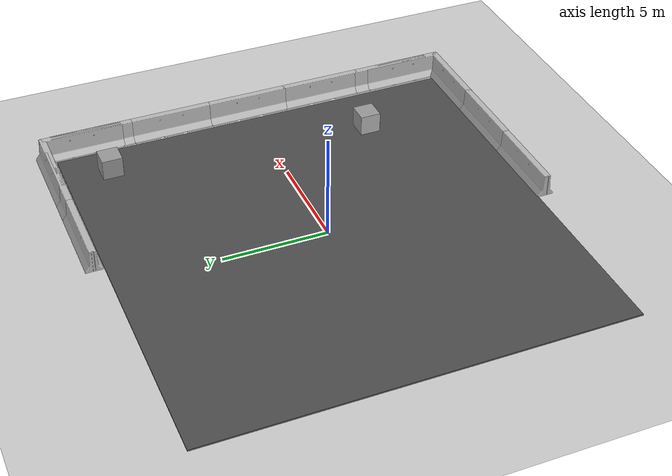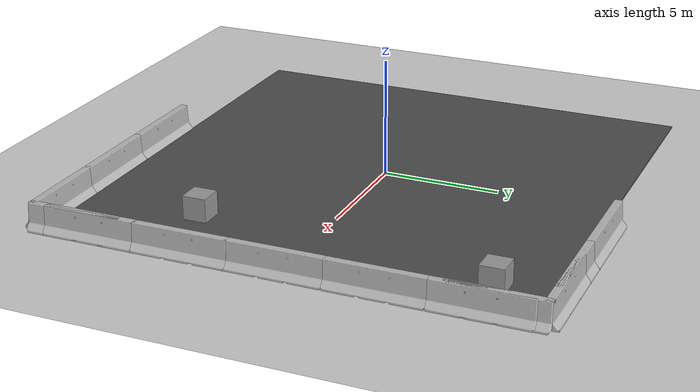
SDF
<sdf version="1.6">
 <world name="default">
  <model name="ground_plane">
   <static>1</static>
   <link name="link">
    <collision name="collision">
     <geometry><plane><normal>0 0 1</normal><size>100 100</size></plane></geometry>
     <surface><friction><ode><mu>100</mu><mu2>50</mu2></ode></friction></surface>
    </collision>
    <visual name="visual">
     <cast_shadows>0</cast_shadows>
     <geometry><plane><normal>0 0 1</normal><size>100 100</size></plane></geometry>
     <material>
      <script><uri>file://media/materials/scripts/gazebo.material</uri><name>Gazebo/Grey</name></script>
     </material>
    </visual>
   </link>
  </model>
  <model name="asphalt_plane">
   <static>1</static>
   <link name="link">
    <collision name="collision"><geometry><box><size>20 20 0.1</size></box></geometry></collision>
    <visual name="visual">
     <cast_shadows>0</cast_shadows>
     <geometry><box><size>20 20 0.1</size></box></geometry>
     <material>
      <script>
       <uri>model://asphalt_plane/materials/scripts</uri>
       <uri>model://asphalt_plane/materials/textures</uri>
       <name>vrc/asphalt</name>
      </script>
     </material>
    </visual>
   </link>
   <pose>-0.108878 -0.066396 0 0 -0 0</pose>
  </model>
  <model name="jersey_barrier_clone_0_clone_clone_0">
   <static>1</static>
   <link name="link">
    <visual name="visual">
     <geometry><mesh><uri>model://jersey_barrier/meshes/jersey_barrier.dae</uri></mesh></geometry>
    </visual>
    <collision name="upright">
     <pose>0 0 0.5715 0 -0 0</pose>
     <geometry><box><size>4.06542 0.3063 1.143</size></box></geometry>
    </collision>
    <collision name="base">
     <pose>0 0 0.032258 0 -0 0</pose>
     <geometry><box><size>4.06542 0.8107 0.064516</size></box></geometry>
    </collision>
    <collision name="base2">
     <pose>0 0 0.1 0 -0 0</pose>
     <geometry><box><size>4.06542 0.65 0.1</size></box></geometry>
    </collision>
    <collision name="base3">
     <pose>0 0 0.2 0 -0 0</pose>
     <geometry><box><size>4.06542 0.5 0.1</size></box></geometry>
    </collision>
    <collision name="left-angle">
     <pose>0 -0.224 0.2401 0.9 -0 0</pose>
     <geometry><box><size>4.06542 0.5 0.064516</size></box></geometry>
    </collision>
    <collision name="right-angle">
     <pose>0 0.224 0.2401 -0.9 0 0</pose>
     <geometry><box><size>4.06542 0.5 0.064516</size></box></geometry>
    </collision>
   </link>
   <pose>10.4387 4.00505 0 0 0 -1.56853</pose>
  </model>
  <model name="jersey_barrier_clone_0_clone_clone_0_clone">
   <static>1</static>
   <link name="link">
    <visual name="visual">
     <geometry><mesh><uri>model://jersey_barrier/meshes/jersey_barrier.dae</uri></mesh></geometry>
    </visual>
    <collision name="upright">
     <pose>0 0 0.5715 0 -0 0</pose>
     <geometry><box><size>4.06542 0.3063 1.143</size></box></geometry>
    </collision>
    <collision name="base">
     <pose>0 0 0.032258 0 -0 0</pose>
     <geometry><box><size>4.06542 0.8107 0.064516</size></box></geometry>
    </collision>
    <collision name="base2">
     <pose>0 0 0.1 0 -0 0</pose>
     <geometry><box><size>4.06542 0.65 0.1</size></box></geometry>
    </collision>
    <collision name="base3">
     <pose>0 0 0.2 0 -0 0</pose>
     <geometry><box><size>4.06542 0.5 0.1</size></box></geometry>
    </collision>
    <collision name="left-angle">
     <pose>0 -0.224 0.2401 0.9 -0 0</pose>
     <geometry><box><size>4.06542 0.5 0.064516</size></box></geometry>
    </collision>
    <collision name="right-angle">
     <pose>0 0.224 0.2401 -0.9 0 0</pose>
     <geometry><box><size>4.06542 0.5 0.064516</size></box></geometry>
    </collision>
   </link>
   <pose>10.4294 8.00092 0 0 0 -1.56853</pose>
  </model>
  <model name="jersey_barrier_clone_0_clone_clone_0_clone_0">
   <static>1</static>
   <link name="link">
    <visual name="visual">
     <geometry><mesh><uri>model://jersey_barrier/meshes/jersey_barrier.dae</uri></mesh></geometry>
    </visual>
    <collision name="upright">
     <pose>0 0 0.5715 0 -0 0</pose>
     <geometry><box><size>4.06542 0.3063 1.143</size></box></geometry>
    </collision>
    <collision name="base">
     <pose>0 0 0.032258 0 -0 0</pose>
     <geometry><box><size>4.06542 0.8107 0.064516</size></box></geometry>
    </collision>
    <collision name="base2">
     <pose>0 0 0.1 0 -0 0</pose>
     <geometry><box><size>4.06542 0.65 0.1</size></box></geometry>
    </collision>
    <collision name="base3">
     <pose>0 0 0.2 0 -0 0</pose>
     <geometry><box><size>4.06542 0.5 0.1</size></box></geometry>
    </collision>
    <collision name="left-angle">
     <pose>0 -0.224 0.2401 0.9 -0 0</pose>
     <geometry><box><size>4.06542 0.5 0.064516</size></box></geometry>
    </collision>
    <collision name="right-angle">
     <pose>0 0.224 0.2401 -0.9 0 0</pose>
     <geometry><box><size>4.06542 0.5 0.064516</size></box></geometry>
    </collision>
   </link>
   <pose>10.4404 0.012962 0 0 0 -1.56853</pose>
  </model>
  <model name="jersey_barrier_clone_0_clone_clone_0_clone_0_clone">
   <static>1</static>
   <link name="link">
    <visual name="visual">
     <geometry><mesh><uri>model://jersey_barrier/meshes/jersey_barrier.dae</uri></mesh></geometry>
    </visual>
    <collision name="upright">
     <pose>0 0 0.5715 0 -0 0</pose>
     <geometry><box><size>4.06542 0.3063 1.143</size></box></geometry>
    </collision>
    <collision name="base">
     <pose>0 0 0.032258 0 -0 0</pose>
     <geometry><box><size>4.06542 0.8107 0.064516</size></box></geometry>
    </collision>
    <collision name="base2">
     <pose>0 0 0.1 0 -0 0</pose>
     <geometry><box><size>4.06542 0.65 0.1</size></box></geometry>
    </collision>
    <collision name="base3">
     <pose>0 0 0.2 0 -0 0</pose>
     <geometry><box><size>4.06542 0.5 0.1</size></box></geometry>
    </collision>
    <collision name="left-angle">
     <pose>0 -0.224 0.2401 0.9 -0 0</pose>
     <geometry><box><size>4.06542 0.5 0.064516</size></box></geometry>
    </collision>
    <collision name="right-angle">
     <pose>0 0.224 0.2401 -0.9 0 0</pose>
     <geometry><box><size>4.06542 0.5 0.064516</size></box></geometry>
    </collision>
   </link>
   <pose>10.454 -3.91926 0 0 0 -1.56853</pose>
  </model>
  <model name="jersey_barrier_clone_0_clone_clone_0_clone_0_clone_clone">
   <static>1</static>
   <link name="link">
    <visual name="visual">
     <geometry><mesh><uri>model://jersey_barrier/meshes/jersey_barrier.dae</uri></mesh></geometry>
    </visual>
    <collision name="upright">
     <pose>0 0 0.5715 0 -0 0</pose>
     <geometry><box><size>4.06542 0.3063 1.143</size></box></geometry>
    </collision>
    <collision name="base">
     <pose>0 0 0.032258 0 -0 0</pose>
     <geometry><box><size>4.06542 0.8107 0.064516</size></box></geometry>
    </collision>
    <collision name="base2">
     <pose>0 0 0.1 0 -0 0</pose>
     <geometry><box><size>4.06542 0.65 0.1</size></box></geometry>
    </collision>
    <collision name="base3">
     <pose>0 0 0.2 0 -0 0</pose>
     <geometry><box><size>4.06542 0.5 0.1</size></box></geometry>
    </collision>
    <collision name="left-angle">
     <pose>0 -0.224 0.2401 0.9 -0 0</pose>
     <geometry><box><size>4.06542 0.5 0.064516</size></box></geometry>
    </collision>
    <collision name="right-angle">
     <pose>0 0.224 0.2401 -0.9 0 0</pose>
     <geometry><box><size>4.06542 0.5 0.064516</size></box></geometry>
    </collision>
   </link>
   <pose>10.4554 -7.82224 0 0 0 -1.56853</pose>
  </model>
  <model name="jersey_barrier_clone_0_clone_clone_0_clone_0_clone_clone_clone">
   <static>1</static>
   <link name="link">
    <visual name="visual">
     <geometry><mesh><uri>model://jersey_barrier/meshes/jersey_barrier.dae</uri></mesh></geometry>
    </visual>
    <collision name="upright">
     <pose>0 0 0.5715 0 -0 0</pose>
     <geometry><box><size>4.06542 0.3063 1.143</size></box></geometry>
    </collision>
    <collision name="base">
     <pose>0 0 0.032258 0 -0 0</pose>
     <geometry><box><size>4.06542 0.8107 0.064516</size></box></geometry>
    </collision>
    <collision name="base2">
     <pose>0 0 0.1 0 -0 0</pose>
     <geometry><box><size>4.06542 0.65 0.1</size></box></geometry>
    </collision>
    <collision name="base3">
     <pose>0 0 0.2 0 -0 0</pose>
     <geometry><box><size>4.06542 0.5 0.1</size></box></geometry>
    </collision>
    <collision name="left-angle">
     <pose>0 -0.224 0.2401 0.9 -0 0</pose>
     <geometry><box><size>4.06542 0.5 0.064516</size></box></geometry>
    </collision>
    <collision name="right-angle">
     <pose>0 0.224 0.2401 -0.9 0 0</pose>
     <geometry><box><size>4.06542 0.5 0.064516</size></box></geometry>
    </collision>
   </link>
   <pose>10.4553 -8.53257 0 0 0 -1.56853</pose>
  </model>
  <model name="jersey_barrier_clone_0_clone_clone_0_clone_0_clone_clone_clone_clone">
   <static>1</static>
   <link name="link">
    <visual name="visual">
     <geometry><mesh><uri>model://jersey_barrier/meshes/jersey_barrier.dae</uri></mesh></geometry>
    </visual>
    <collision name="upright">
     <pose>0 0 0.5715 0 -0 0</pose>
     <geometry><box><size>4.06542 0.3063 1.143</size></box></geometry>
    </collision>
    <collision name="base">
     <pose>0 0 0.032258 0 -0 0</pose>
     <geometry><box><size>4.06542 0.8107 0.064516</size></box></geometry>
    </collision>
    <collision name="base2">
     <pose>0 0 0.1 0 -0 0</pose>
     <geometry><box><size>4.06542 0.65 0.1</size></box></geometry>
    </collision>
    <collision name="base3">
     <pose>0 0 0.2 0 -0 0</pose>
     <geometry><box><size>4.06542 0.5 0.1</size></box></geometry>
    </collision>
    <collision name="left-angle">
     <pose>0 -0.224 0.2401 0.9 -0 0</pose>
     <geometry><box><size>4.06542 0.5 0.064516</size></box></geometry>
    </collision>
    <collision name="right-angle">
     <pose>0 0.224 0.2401 -0.9 0 0</pose>
     <geometry><box><size>4.06542 0.5 0.064516</size></box></geometry>
    </collision>
   </link>
   <pose>8.54111 -10.4306 0 0 0 -3.1405</pose>
  </model>
  <model name="jersey_barrier_clone_0_clone_clone_0_clone_0_clone_clone_clone_clone_clone">
   <static>1</static>
   <link name="link">
    <visual name="visual">
     <geometry><mesh><uri>model://jersey_barrier/meshes/jersey_barrier.dae</uri></mesh></geometry>
    </visual>
    <collision name="upright">
     <pose>0 0 0.5715 0 -0 0</pose>
     <geometry><box><size>4.06542 0.3063 1.143</size></box></geometry>
    </collision>
    <collision name="base">
     <pose>0 0 0.032258 0 -0 0</pose>
     <geometry><box><size>4.06542 0.8107 0.064516</size></box></geometry>
    </collision>
    <collision name="base2">
     <pose>0 0 0.1 0 -0 0</pose>
     <geometry><box><size>4.06542 0.65 0.1</size></box></geometry>
    </collision>
    <collision name="base3">
     <pose>0 0 0.2 0 -0 0</pose>
     <geometry><box><size>4.06542 0.5 0.1</size></box></geometry>
    </collision>
    <collision name="left-angle">
     <pose>0 -0.224 0.2401 0.9 -0 0</pose>
     <geometry><box><size>4.06542 0.5 0.064516</size></box></geometry>
    </collision>
    <collision name="right-angle">
     <pose>0 0.224 0.2401 -0.9 0 0</pose>
     <geometry><box><size>4.06542 0.5 0.064516</size></box></geometry>
    </collision>
   </link>
   <pose>4.67032 -10.4305 0 0 0 -3.1405</pose>
  </model>
  <model name="jersey_barrier_clone_0_clone_clone_0_clone_0_clone_clone_clone_clone_clone_clone">
   <static>1</static>
   <link name="link">
    <visual name="visual">
     <geometry><mesh><uri>model://jersey_barrier/meshes/jersey_barrier.dae</uri></mesh></geometry>
    </visual>
    <collision name="upright">
     <pose>0 0 0.5715 0 -0 0</pose>
     <geometry><box><size>4.06542 0.3063 1.143</size></box></geometry>
    </collision>
    <collision name="base">
     <pose>0 0 0.032258 0 -0 0</pose>
     <geometry><box><size>4.06542 0.8107 0.064516</size></box></geometry>
    </collision>
    <collision name="base2">
     <pose>0 0 0.1 0 -0 0</pose>
     <geometry><box><size>4.06542 0.65 0.1</size></box></geometry>
    </collision>
    <collision name="base3">
     <pose>0 0 0.2 0 -0 0</pose>
     <geometry><box><size>4.06542 0.5 0.1</size></box></geometry>
    </collision>
    <collision name="left-angle">
     <pose>0 -0.224 0.2401 0.9 -0 0</pose>
     <geometry><box><size>4.06542 0.5 0.064516</size></box></geometry>
    </collision>
    <collision name="right-angle">
     <pose>0 0.224 0.2401 -0.9 0 0</pose>
     <geometry><box><size>4.06542 0.5 0.064516</size></box></geometry>
    </collision>
   </link>
   <pose>0.717436 -10.4264 0 0 0 -3.1405</pose>
  </model>
  <model name="jersey_barrier_clone_0_clone_clone_0_clone_0_clone_clone_clone_clone_clone_clone_clone_clone_clone_0_clone_clone_clone">
   <static>1</static>
   <link name="link">
    <visual name="visual">
     <geometry><mesh><uri>model://jersey_barrier/meshes/jersey_barrier.dae</uri></mesh></geometry>
    </visual>
    <collision name="upright">
     <pose>0 0 0.5715 0 -0 0</pose>
     <geometry><box><size>4.06542 0.3063 1.143</size></box></geometry>
    </collision>
    <collision name="base">
     <pose>0 0 0.032258 0 -0 0</pose>
     <geometry><box><size>4.06542 0.8107 0.064516</size></box></geometry>
    </collision>
    <collision name="base2">
     <pose>0 0 0.1 0 -0 0</pose>
     <geometry><box><size>4.06542 0.65 0.1</size></box></geometry>
    </collision>
    <collision name="base3">
     <pose>0 0 0.2 0 -0 0</pose>
     <geometry><box><size>4.06542 0.5 0.1</size></box></geometry>
    </collision>
    <collision name="left-angle">
     <pose>0 -0.224 0.2401 0.9 -0 0</pose>
     <geometry><box><size>4.06542 0.5 0.064516</size></box></geometry>
    </collision>
    <collision name="right-angle">
     <pose>0 0.224 0.2401 -0.9 0 0</pose>
     <geometry><box><size>4.06542 0.5 0.064516</size></box></geometry>
    </collision>
   </link>
   <pose>3.34861 10.3929 0 0 0 -3.1405</pose>
  </model>
  <model name="jersey_barrier_clone_0_clone_clone_0_clone_0_clone_clone_clone_clone_clone_clone_clone_clone_clone_0_clone_clone_clone_clone">
   <static>1</static>
   <link name="link">
    <visual name="visual">
     <geometry><mesh><uri>model://jersey_barrier/meshes/jersey_barrier.dae</uri></mesh></geometry>
    </visual>
    <collision name="upright">
     <pose>0 0 0.5715 0 -0 0</pose>
     <geometry><box><size>4.06542 0.3063 1.143</size></box></geometry>
    </collision>
    <collision name="base">
     <pose>0 0 0.032258 0 -0 0</pose>
     <geometry><box><size>4.06542 0.8107 0.064516</size></box></geometry>
    </collision>
    <collision name="base2">
     <pose>0 0 0.1 0 -0 0</pose>
     <geometry><box><size>4.06542 0.65 0.1</size></box></geometry>
    </collision>
    <collision name="base3">
     <pose>0 0 0.2 0 -0 0</pose>
     <geometry><box><size>4.06542 0.5 0.1</size></box></geometry>
    </collision>
    <collision name="left-angle">
     <pose>0 -0.224 0.2401 0.9 -0 0</pose>
     <geometry><box><size>4.06542 0.5 0.064516</size></box></geometry>
    </collision>
    <collision name="right-angle">
     <pose>0 0.224 0.2401 -0.9 0 0</pose>
     <geometry><box><size>4.06542 0.5 0.064516</size></box></geometry>
    </collision>
   </link>
   <pose>7.33451 10.3962 0 0 0 -3.1405</pose>
  </model>
  <model name="jersey_barrier_clone_0_clone_clone_0_clone_0_clone_clone_clone_clone_clone_clone_clone_clone_clone_0_clone_clone_clone_clone_clone">
   <static>1</static>
   <link name="link">
    <visual name="visual">
     <geometry><mesh><uri>model://jersey_barrier/meshes/jersey_barrier.dae</uri></mesh></geometry>
    </visual>
    <collision name="upright">
     <pose>0 0 0.5715 0 -0 0</pose>
     <geometry><box><size>4.06542 0.3063 1.143</size></box></geometry>
    </collision>
    <collision name="base">
     <pose>0 0 0.032258 0 -0 0</pose>
     <geometry><box><size>4.06542 0.8107 0.064516</size></box></geometry>
    </collision>
    <collision name="base2">
     <pose>0 0 0.1 0 -0 0</pose>
     <geometry><box><size>4.06542 0.65 0.1</size></box></geometry>
    </collision>
    <collision name="base3">
     <pose>0 0 0.2 0 -0 0</pose>
     <geometry><box><size>4.06542 0.5 0.1</size></box></geometry>
    </collision>
    <collision name="left-angle">
     <pose>0 -0.224 0.2401 0.9 -0 0</pose>
     <geometry><box><size>4.06542 0.5 0.064516</size></box></geometry>
    </collision>
    <collision name="right-angle">
     <pose>0 0.224 0.2401 -0.9 0 0</pose>
     <geometry><box><size>4.06542 0.5 0.064516</size></box></geometry>
    </collision>
   </link>
   <pose>8.50613 10.3986 0 0 0 -3.1405</pose>
  </model>
  <model name="jersey_barrier_clone_0_clone_clone_0_clone_clone">
   <static>1</static>
   <link name="link">
    <visual name="visual">
     <geometry><mesh><uri>model://jersey_barrier/meshes/jersey_barrier.dae</uri></mesh></geometry>
    </visual>
    <collision name="upright">
     <pose>0 0 0.5715 0 -0 0</pose>
     <geometry><box><size>4.06542 0.3063 1.143</size></box></geometry>
    </collision>
    <collision name="base">
     <pose>0 0 0.032258 0 -0 0</pose>
     <geometry><box><size>4.06542 0.8107 0.064516</size></box></geometry>
    </collision>
    <collision name="base2">
     <pose>0 0 0.1 0 -0 0</pose>
     <geometry><box><size>4.06542 0.65 0.1</size></box></geometry>
    </collision>
    <collision name="base3">
     <pose>0 0 0.2 0 -0 0</pose>
     <geometry><box><size>4.06542 0.5 0.1</size></box></geometry>
    </collision>
    <collision name="left-angle">
     <pose>0 -0.224 0.2401 0.9 -0 0</pose>
     <geometry><box><size>4.06542 0.5 0.064516</size></box></geometry>
    </collision>
    <collision name="right-angle">
     <pose>0 0.224 0.2401 -0.9 0 0</pose>
     <geometry><box><size>4.06542 0.5 0.064516</size></box></geometry>
    </collision>
   </link>
   <pose>10.4015 8.53004 0 0 0 -1.56853</pose>
  </model>
  <model name="unit_box">
   <pose>6.99999 -5 0.55 0 -0 4.5e-05</pose>
   <link name="link">
    <inertial>
     <mass>1</mass>
     <inertia>
      <ixx>0.166667</ixx>
      <ixy>0</ixy>
      <ixz>0</ixz>
      <iyy>0.166667</iyy>
      <iyz>0</iyz>
      <izz>0.166667</izz>
     </inertia>
    </inertial>
    <collision name="collision"><geometry><box><size>1 1 1</size></box></geometry></collision>
    <visual name="visual">
     <geometry><box><size>1 1 1</size></box></geometry>
     <material>
      <script><name>Gazebo/Grey</name><uri>file://media/materials/scripts/gazebo.material</uri></script>
     </material>
    </visual>
   </link>
  </model>
  <model name="unit_box_2">
   <pose>8.17464 7.73332 0.55 0 -0 5.5e-05</pose>
   <link name="link">
    <inertial>
     <mass>1</mass>
     <inertia>
      <ixx>0.166667</ixx>
      <ixy>0</ixy>
      <ixz>0</ixz>
      <iyy>0.166667</iyy>
      <iyz>0</iyz>
      <izz>0.166667</izz>
     </inertia>
    </inertial>
    <collision name="collision"><geometry><box><size>1 1 1</size></box></geometry></collision>
    <visual name="visual">
     <geometry><box><size>1 1 1</size></box></geometry>
     <material>
      <script><name>Gazebo/Grey</name><uri>file://media/materials/scripts/gazebo.material</uri></script>
     </material>
    </visual>
   </link>
  </model>
  <model name="Apriltag36_11_00000">
   <link name="main">
    <visual name="main_Visual">
     <geometry><box><size>1 1 0.01</size></box></geometry>
     <material>
      <script>
       <uri>model://Apriltag36_11_00000/materials/scripts</uri>
       <uri>model://Apriltag36_11_00000/materials/textures</uri>
       <name>Apriltag36_11_00000</name>
      </script>
     </material>
    </visual>
   </link>
   <static>1</static>
   <pose>6.49477 -5.00022 0.548581 0 -1.57079 0</pose>
  </model>
  <model name="Apriltag36_11_00002">
   <link name="main">
    <visual name="main_Visual">
     <geometry><box><size>1 1 0.01</size></box></geometry>
     <material>
      <script>
       <uri>model://Apriltag36_11_00002/materials/scripts</uri>
       <uri>model://Apriltag36_11_00002/materials/textures</uri>
       <name>Apriltag36_11_00002</name>
      </script>
     </material>
    </visual>
   </link>
   <static>1</static>
   <pose>8.17 7.23683 0.55 1.57079 -1.57079 -5e-06</pose>
  </model>
 </world>
</sdf>
